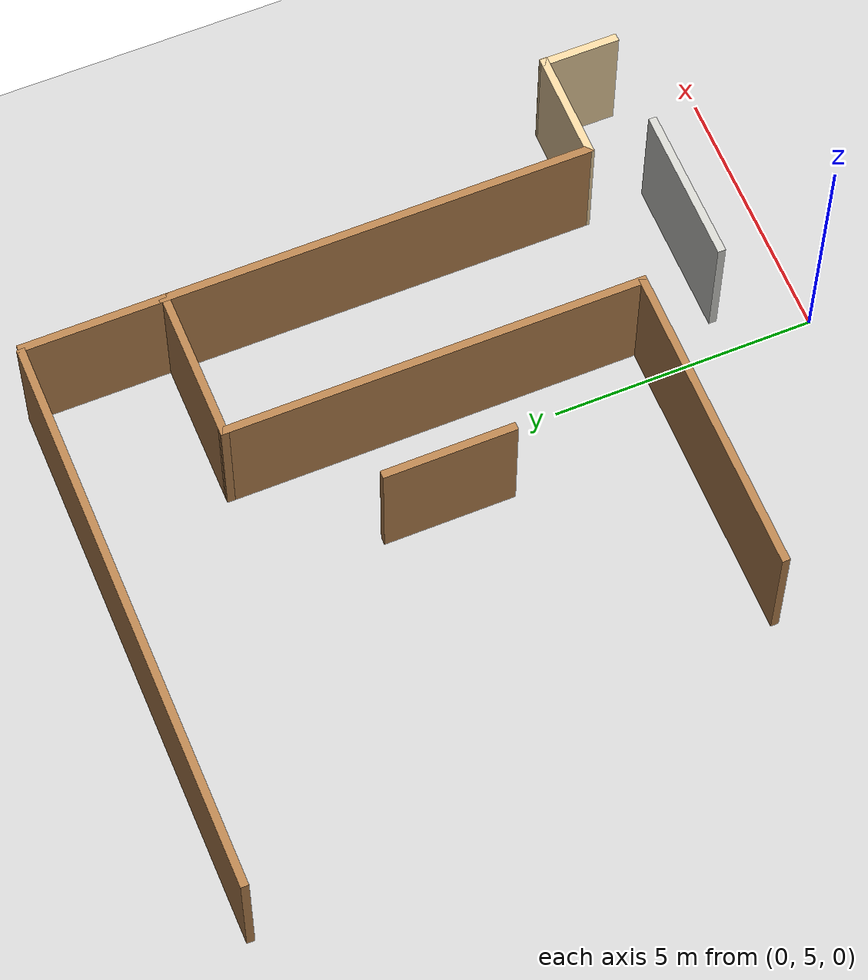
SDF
<sdf version="1.6">
 <world name="default">
  <model name="ground_plane">
   <static>1</static>
   <link name="link">
    <collision name="collision">
     <geometry><plane><normal>0 0 1</normal><size>100 100</size></plane></geometry>
     <surface><friction><ode><mu>100</mu><mu2>50</mu2></ode></friction></surface>
    </collision>
    <visual name="visual">
     <cast_shadows>0</cast_shadows>
     <geometry><plane><normal>0 0 1</normal><size>100 100</size></plane></geometry>
     <material>
      <script><uri>file://media/materials/scripts/gazebo.material</uri><name>Gazebo/Grey</name></script>
     </material>
    </visual>
   </link>
  </model>
  <model name="myHouse">
   <link name="Wall_22">
    <pose>5.64675 -0.032335 0 0 -0 3.14159</pose>
    <visual name="Wall_22_Visual">
     <pose>0 0 1.25 0 -0 0</pose>
     <geometry><box><size>3 0.15 2.5</size></box></geometry>
     <material>
      <script><uri>file://media/materials/scripts/gazebo.material</uri><name>Gazebo/CeilingTiled</name></script>
      <ambient>0.921569 0.807843 0.615686 1</ambient>
      <diffuse>1 1 1 1</diffuse>
      <specular>0 0 0 1</specular>
      <emissive>0 0 0 1</emissive>
     </material>
     <meta><layer>0</layer></meta>
    </visual>
    <collision name="Wall_22_Collision">
     <pose>0 0 1.25 0 -0 0</pose>
     <geometry><box><size>3 0.15 2.5</size></box></geometry>
     <surface>
      <friction>
       <ode><mu>1</mu><mu2>1</mu2><fdir1>0 0 0</fdir1><slip1>0</slip1><slip2>0</slip2></ode>
       <torsional>
        <coefficient>1</coefficient>
        <patch_radius>0</patch_radius>
        <surface_radius>0</surface_radius>
        <use_patch_radius>1</use_patch_radius>
        <ode><slip>0</slip></ode>
       </torsional>
      </friction>
      <bounce><restitution_coefficient>0</restitution_coefficient><threshold>1e+06</threshold></bounce>
      <contact>
       <collide_without_contact>0</collide_without_contact>
       <collide_without_contact_bitmask>1</collide_without_contact_bitmask>
       <collide_bitmask>1</collide_bitmask>
       <ode>
        <soft_cfm>0</soft_cfm>
        <soft_erp>0.2</soft_erp>
        <kp>1e+13</kp>
        <kd>1</kd>
        <max_vel>0.01</max_vel>
        <min_depth>0</min_depth>
       </ode>
       <bullet>
        <split_impulse>1</split_impulse>
        <split_impulse_penetration_threshold>-0.01</split_impulse_penetration_threshold>
        <soft_cfm>0</soft_cfm>
        <soft_erp>0.2</soft_erp>
        <kp>1e+13</kp>
        <kd>1</kd>
       </bullet>
      </contact>
     </surface>
    </collision>
   </link>
   <link name="Wall_28">
    <pose>1.20845 1.47937 0 0 -0 0</pose>
    <visual name="Wall_28_Visual">
     <pose>0 0 1.25 0 -0 0</pose>
     <geometry><box><size>6 0.15 2.5</size></box></geometry>
     <material>
      <script><uri>file://media/materials/scripts/gazebo.material</uri><name>Gazebo/Wood</name></script>
      <ambient>1 1 1 1</ambient>
      <diffuse>1 1 1 1</diffuse>
      <specular>0.2 0.2 0.2 1</specular>
      <emissive>0 0 0 1</emissive>
     </material>
     <meta><layer>0</layer></meta>
    </visual>
    <collision name="Wall_28_Collision">
     <pose>0 0 1.25 0 -0 0</pose>
     <geometry><box><size>6 0.15 2.5</size></box></geometry>
     <surface>
      <friction>
       <ode><mu>1</mu><mu2>1</mu2><fdir1>0 0 0</fdir1><slip1>0</slip1><slip2>0</slip2></ode>
       <torsional>
        <coefficient>1</coefficient>
        <patch_radius>0</patch_radius>
        <surface_radius>0</surface_radius>
        <use_patch_radius>1</use_patch_radius>
        <ode><slip>0</slip></ode>
       </torsional>
      </friction>
      <bounce><restitution_coefficient>0</restitution_coefficient><threshold>1e+06</threshold></bounce>
      <contact>
       <collide_without_contact>0</collide_without_contact>
       <collide_without_contact_bitmask>1</collide_without_contact_bitmask>
       <collide_bitmask>1</collide_bitmask>
       <ode>
        <soft_cfm>0</soft_cfm>
        <soft_erp>0.2</soft_erp>
        <kp>1e+13</kp>
        <kd>1</kd>
        <max_vel>0.01</max_vel>
        <min_depth>0</min_depth>
       </ode>
       <bullet>
        <split_impulse>1</split_impulse>
        <split_impulse_penetration_threshold>-0.01</split_impulse_penetration_threshold>
        <soft_cfm>0</soft_cfm>
        <soft_erp>0.2</soft_erp>
        <kp>1e+13</kp>
        <kd>1</kd>
       </bullet>
      </contact>
     </surface>
    </collision>
   </link>
   <link name="Wall_29">
    <pose>4.13345 5.40437 0 0 -0 1.5708</pose>
    <visual name="Wall_29_Visual">
     <pose>0 0 1.25 0 -0 0</pose>
     <geometry><box><size>8 0.15 2.5</size></box></geometry>
     <material>
      <script><uri>file://media/materials/scripts/gazebo.material</uri><name>Gazebo/Wood</name></script>
      <ambient>1 1 1 1</ambient>
      <diffuse>1 1 1 1</diffuse>
      <specular>0.2 0.2 0.2 1</specular>
      <emissive>0 0 0 1</emissive>
     </material>
     <meta><layer>0</layer></meta>
    </visual>
    <collision name="Wall_29_Collision">
     <pose>0 0 1.25 0 -0 0</pose>
     <geometry><box><size>8 0.15 2.5</size></box></geometry>
     <surface>
      <friction>
       <ode><mu>1</mu><mu2>1</mu2><fdir1>0 0 0</fdir1><slip1>0</slip1><slip2>0</slip2></ode>
       <torsional>
        <coefficient>1</coefficient>
        <patch_radius>0</patch_radius>
        <surface_radius>0</surface_radius>
        <use_patch_radius>1</use_patch_radius>
        <ode><slip>0</slip></ode>
       </torsional>
      </friction>
      <bounce><restitution_coefficient>0</restitution_coefficient><threshold>1e+06</threshold></bounce>
      <contact>
       <collide_without_contact>0</collide_without_contact>
       <collide_without_contact_bitmask>1</collide_without_contact_bitmask>
       <collide_bitmask>1</collide_bitmask>
       <ode>
        <soft_cfm>0</soft_cfm>
        <soft_erp>0.2</soft_erp>
        <kp>1e+13</kp>
        <kd>1</kd>
        <max_vel>0.01</max_vel>
        <min_depth>0</min_depth>
       </ode>
       <bullet>
        <split_impulse>1</split_impulse>
        <split_impulse_penetration_threshold>-0.01</split_impulse_penetration_threshold>
        <soft_cfm>0</soft_cfm>
        <soft_erp>0.2</soft_erp>
        <kp>1e+13</kp>
        <kd>1</kd>
       </bullet>
      </contact>
     </surface>
    </collision>
   </link>
   <link name="Wall_30">
    <pose>5.55565 9.3284 0 0 0 -0.000679</pose>
    <visual name="Wall_30_Visual">
     <pose>0 0 1.25 0 -0 0</pose>
     <geometry><box><size>2.99474 0.15 2.5</size></box></geometry>
     <material>
      <script><uri>file://media/materials/scripts/gazebo.material</uri><name>Gazebo/Wood</name></script>
      <ambient>1 1 1 1</ambient>
      <diffuse>1 1 1 1</diffuse>
      <specular>0.2 0.2 0.2 1</specular>
      <emissive>0 0 0 1</emissive>
     </material>
     <meta><layer>0</layer></meta>
    </visual>
    <collision name="Wall_30_Collision">
     <pose>0 0 1.25 0 -0 0</pose>
     <geometry><box><size>2.99474 0.15 2.5</size></box></geometry>
     <surface>
      <friction>
       <ode><mu>1</mu><mu2>1</mu2><fdir1>0 0 0</fdir1><slip1>0</slip1><slip2>0</slip2></ode>
       <torsional>
        <coefficient>1</coefficient>
        <patch_radius>0</patch_radius>
        <surface_radius>0</surface_radius>
        <use_patch_radius>1</use_patch_radius>
        <ode><slip>0</slip></ode>
       </torsional>
      </friction>
      <bounce><restitution_coefficient>0</restitution_coefficient><threshold>1e+06</threshold></bounce>
      <contact>
       <collide_without_contact>0</collide_without_contact>
       <collide_without_contact_bitmask>1</collide_without_contact_bitmask>
       <collide_bitmask>1</collide_bitmask>
       <ode>
        <soft_cfm>0</soft_cfm>
        <soft_erp>0.2</soft_erp>
        <kp>1e+13</kp>
        <kd>1</kd>
        <max_vel>0.01</max_vel>
        <min_depth>0</min_depth>
       </ode>
       <bullet>
        <split_impulse>1</split_impulse>
        <split_impulse_penetration_threshold>-0.01</split_impulse_penetration_threshold>
        <soft_cfm>0</soft_cfm>
        <soft_erp>0.2</soft_erp>
        <kp>1e+13</kp>
        <kd>1</kd>
       </bullet>
      </contact>
     </surface>
    </collision>
   </link>
   <link name="Wall_31">
    <pose>6.97785 5.3228 0 0 0 -1.5708</pose>
    <visual name="Wall_31_Visual">
     <pose>0 0 1.25 0 -0 0</pose>
     <geometry><box><size>8.25 0.15 2.5</size></box></geometry>
     <material>
      <script><uri>file://media/materials/scripts/gazebo.material</uri><name>Gazebo/Wood</name></script>
      <ambient>1 1 1 1</ambient>
      <diffuse>1 1 1 1</diffuse>
      <specular>0.2 0.2 0.2 1</specular>
      <emissive>0 0 0 1</emissive>
     </material>
     <meta><layer>0</layer></meta>
    </visual>
    <collision name="Wall_31_Collision">
     <pose>0 0 1.25 0 -0 0</pose>
     <geometry><box><size>8.25 0.15 2.5</size></box></geometry>
     <surface>
      <friction>
       <ode><mu>1</mu><mu2>1</mu2><fdir1>0 0 0</fdir1><slip1>0</slip1><slip2>0</slip2></ode>
       <torsional>
        <coefficient>1</coefficient>
        <patch_radius>0</patch_radius>
        <surface_radius>0</surface_radius>
        <use_patch_radius>1</use_patch_radius>
        <ode><slip>0</slip></ode>
       </torsional>
      </friction>
      <bounce><restitution_coefficient>0</restitution_coefficient><threshold>1e+06</threshold></bounce>
      <contact>
       <collide_without_contact>0</collide_without_contact>
       <collide_without_contact_bitmask>1</collide_without_contact_bitmask>
       <collide_bitmask>1</collide_bitmask>
       <ode>
        <soft_cfm>0</soft_cfm>
        <soft_erp>0.2</soft_erp>
        <kp>1e+13</kp>
        <kd>1</kd>
        <max_vel>0.01</max_vel>
        <min_depth>0</min_depth>
       </ode>
       <bullet>
        <split_impulse>1</split_impulse>
        <split_impulse_penetration_threshold>-0.01</split_impulse_penetration_threshold>
        <soft_cfm>0</soft_cfm>
        <soft_erp>0.2</soft_erp>
        <kp>1e+13</kp>
        <kd>1</kd>
       </bullet>
      </contact>
     </surface>
    </collision>
   </link>
   <link name="Wall_39">
    <pose>2.31022 5.90419 0 0 -0 1.5708</pose>
    <visual name="Wall_39_Visual">
     <pose>0 0 1.25 0 -0 0</pose>
     <geometry><box><size>2.5 0.15 2.5</size></box></geometry>
     <material>
      <script><uri>file://media/materials/scripts/gazebo.material</uri><name>Gazebo/Wood</name></script>
      <ambient>1 1 1 1</ambient>
      <diffuse>1 1 1 1</diffuse>
      <specular>0.2 0.2 0.2 1</specular>
      <emissive>0 0 0 1</emissive>
     </material>
     <meta><layer>0</layer></meta>
    </visual>
    <collision name="Wall_39_Collision">
     <pose>0 0 1.25 0 -0 0</pose>
     <geometry><box><size>2.5 0.15 2.5</size></box></geometry>
     <surface>
      <friction>
       <ode><mu>1</mu><mu2>1</mu2><fdir1>0 0 0</fdir1><slip1>0</slip1><slip2>0</slip2></ode>
       <torsional>
        <coefficient>1</coefficient>
        <patch_radius>0</patch_radius>
        <surface_radius>0</surface_radius>
        <use_patch_radius>1</use_patch_radius>
        <ode><slip>0</slip></ode>
       </torsional>
      </friction>
      <bounce><restitution_coefficient>0</restitution_coefficient><threshold>1e+06</threshold></bounce>
      <contact>
       <collide_without_contact>0</collide_without_contact>
       <collide_without_contact_bitmask>1</collide_without_contact_bitmask>
       <collide_bitmask>1</collide_bitmask>
       <ode>
        <soft_cfm>0</soft_cfm>
        <soft_erp>0.2</soft_erp>
        <kp>1e+13</kp>
        <kd>1</kd>
        <max_vel>0.01</max_vel>
        <min_depth>0</min_depth>
       </ode>
       <bullet>
        <split_impulse>1</split_impulse>
        <split_impulse_penetration_threshold>-0.01</split_impulse_penetration_threshold>
        <soft_cfm>0</soft_cfm>
        <soft_erp>0.2</soft_erp>
        <kp>1e+13</kp>
        <kd>1</kd>
       </bullet>
      </contact>
     </surface>
    </collision>
   </link>
   <link name="Wall_47">
    <pose>1.59009 12.0045 0 0 -0 0</pose>
    <visual name="Wall_47_Visual">
     <pose>0 0 1.25 0 -0 0</pose>
     <geometry><box><size>10.75 0.15 2.5</size></box></geometry>
     <material>
      <script><uri>file://media/materials/scripts/gazebo.material</uri><name>Gazebo/Wood</name></script>
      <ambient>1 1 1 1</ambient>
      <diffuse>1 1 1 1</diffuse>
      <specular>0.2 0.2 0.2 1</specular>
      <emissive>0 0 0 1</emissive>
     </material>
     <meta><layer>0</layer></meta>
    </visual>
    <collision name="Wall_47_Collision">
     <pose>0 0 1.25 0 -0 0</pose>
     <geometry><box><size>10.75 0.15 2.5</size></box></geometry>
     <surface>
      <friction>
       <ode><mu>1</mu><mu2>1</mu2><fdir1>0 0 0</fdir1><slip1>0</slip1><slip2>0</slip2></ode>
       <torsional>
        <coefficient>1</coefficient>
        <patch_radius>0</patch_radius>
        <surface_radius>0</surface_radius>
        <use_patch_radius>1</use_patch_radius>
        <ode><slip>0</slip></ode>
       </torsional>
      </friction>
      <bounce><restitution_coefficient>0</restitution_coefficient><threshold>1e+06</threshold></bounce>
      <contact>
       <collide_without_contact>0</collide_without_contact>
       <collide_without_contact_bitmask>1</collide_without_contact_bitmask>
       <collide_bitmask>1</collide_bitmask>
       <ode>
        <soft_cfm>0</soft_cfm>
        <soft_erp>0.2</soft_erp>
        <kp>1e+13</kp>
        <kd>1</kd>
        <max_vel>0.01</max_vel>
        <min_depth>0</min_depth>
       </ode>
       <bullet>
        <split_impulse>1</split_impulse>
        <split_impulse_penetration_threshold>-0.01</split_impulse_penetration_threshold>
        <soft_cfm>0</soft_cfm>
        <soft_erp>0.2</soft_erp>
        <kp>1e+13</kp>
        <kd>1</kd>
       </bullet>
      </contact>
     </surface>
    </collision>
   </link>
   <link name="Wall_49">
    <pose>6.97785 10.6728 0 0 -0 1.5708</pose>
    <visual name="Wall_49_Visual">
     <pose>0 0 1.25 0 -0 0</pose>
     <geometry><box><size>2.75 0.15 2.5</size></box></geometry>
     <material>
      <script><uri>file://media/materials/scripts/gazebo.material</uri><name>Gazebo/Wood</name></script>
      <ambient>1 1 1 1</ambient>
      <diffuse>1 1 1 1</diffuse>
      <specular>0.2 0.2 0.2 1</specular>
      <emissive>0 0 0 1</emissive>
     </material>
     <meta><layer>0</layer></meta>
    </visual>
    <collision name="Wall_49_Collision">
     <pose>0 0 1.25 0 -0 0</pose>
     <geometry><box><size>2.75 0.15 2.5</size></box></geometry>
     <surface>
      <friction>
       <ode><mu>1</mu><mu2>1</mu2><fdir1>0 0 0</fdir1><slip1>0</slip1><slip2>0</slip2></ode>
       <torsional>
        <coefficient>1</coefficient>
        <patch_radius>0</patch_radius>
        <surface_radius>0</surface_radius>
        <use_patch_radius>1</use_patch_radius>
        <ode><slip>0</slip></ode>
       </torsional>
      </friction>
      <bounce><restitution_coefficient>0</restitution_coefficient><threshold>1e+06</threshold></bounce>
      <contact>
       <collide_without_contact>0</collide_without_contact>
       <collide_without_contact_bitmask>1</collide_without_contact_bitmask>
       <collide_bitmask>1</collide_bitmask>
       <ode>
        <soft_cfm>0</soft_cfm>
        <soft_erp>0.2</soft_erp>
        <kp>1e+13</kp>
        <kd>1</kd>
        <max_vel>0.01</max_vel>
        <min_depth>0</min_depth>
       </ode>
       <bullet>
        <split_impulse>1</split_impulse>
        <split_impulse_penetration_threshold>-0.01</split_impulse_penetration_threshold>
        <soft_cfm>0</soft_cfm>
        <soft_erp>0.2</soft_erp>
        <kp>1e+13</kp>
        <kd>1</kd>
       </bullet>
      </contact>
     </surface>
    </collision>
   </link>
   <link name="Wall_51">
    <pose>7.98368 1.27165 0 0 0 -0.001144</pose>
    <visual name="Wall_51_Visual">
     <pose>0 0 1.25 0 -0 0</pose>
     <geometry><box><size>2.16166 0.15 2.5</size></box></geometry>
     <material>
      <script><uri>file://media/materials/scripts/gazebo.material</uri><name>Gazebo/Grey</name></script>
      <ambient>0.921569 0.807843 0.615686 1</ambient>
      <diffuse>0.7 0.7 0.7 1</diffuse>
      <specular>0.01 0.01 0.01 1</specular>
      <emissive>0 0 0 1</emissive>
     </material>
     <meta><layer>0</layer></meta>
    </visual>
    <collision name="Wall_51_Collision">
     <pose>0 0 1.25 0 -0 0</pose>
     <geometry><box><size>2.16166 0.15 2.5</size></box></geometry>
     <surface>
      <friction>
       <ode><mu>1</mu><mu2>1</mu2><fdir1>0 0 0</fdir1><slip1>0</slip1><slip2>0</slip2></ode>
       <torsional>
        <coefficient>1</coefficient>
        <patch_radius>0</patch_radius>
        <surface_radius>0</surface_radius>
        <use_patch_radius>1</use_patch_radius>
        <ode><slip>0</slip></ode>
       </torsional>
      </friction>
      <bounce><restitution_coefficient>0</restitution_coefficient><threshold>1e+06</threshold></bounce>
      <contact>
       <collide_without_contact>0</collide_without_contact>
       <collide_without_contact_bitmask>1</collide_without_contact_bitmask>
       <collide_bitmask>1</collide_bitmask>
       <ode>
        <soft_cfm>0</soft_cfm>
        <soft_erp>0.2</soft_erp>
        <kp>1e+13</kp>
        <kd>1</kd>
        <max_vel>0.01</max_vel>
        <min_depth>0</min_depth>
       </ode>
       <bullet>
        <split_impulse>1</split_impulse>
        <split_impulse_penetration_threshold>-0.01</split_impulse_penetration_threshold>
        <soft_cfm>0</soft_cfm>
        <soft_erp>0.2</soft_erp>
        <kp>1e+13</kp>
        <kd>1</kd>
       </bullet>
      </contact>
     </surface>
    </collision>
   </link>
   <link name="Wall_52">
    <pose>8.97976 0.595501 0 0 0 -1.5708</pose>
    <visual name="Wall_52_Visual">
     <pose>0 0 1.25 0 -0 0</pose>
     <geometry><box><size>1.5 0.15 2.5</size></box></geometry>
     <material>
      <script><uri>file://media/materials/scripts/gazebo.material</uri><name>Gazebo/Grey</name></script>
      <ambient>0.921569 0.807843 0.615686 1</ambient>
      <diffuse>0.7 0.7 0.7 1</diffuse>
      <specular>0.01 0.01 0.01 1</specular>
      <emissive>0 0 0 1</emissive>
     </material>
     <meta><layer>0</layer></meta>
    </visual>
    <collision name="Wall_52_Collision">
     <pose>0 0 1.25 0 -0 0</pose>
     <geometry><box><size>1.5 0.15 2.5</size></box></geometry>
     <surface>
      <friction>
       <ode><mu>1</mu><mu2>1</mu2><fdir1>0 0 0</fdir1><slip1>0</slip1><slip2>0</slip2></ode>
       <torsional>
        <coefficient>1</coefficient>
        <patch_radius>0</patch_radius>
        <surface_radius>0</surface_radius>
        <use_patch_radius>1</use_patch_radius>
        <ode><slip>0</slip></ode>
       </torsional>
      </friction>
      <bounce><restitution_coefficient>0</restitution_coefficient><threshold>1e+06</threshold></bounce>
      <contact>
       <collide_without_contact>0</collide_without_contact>
       <collide_without_contact_bitmask>1</collide_without_contact_bitmask>
       <collide_bitmask>1</collide_bitmask>
       <ode>
        <soft_cfm>0</soft_cfm>
        <soft_erp>0.2</soft_erp>
        <kp>1e+13</kp>
        <kd>1</kd>
        <max_vel>0.01</max_vel>
        <min_depth>0</min_depth>
       </ode>
       <bullet>
        <split_impulse>1</split_impulse>
        <split_impulse_penetration_threshold>-0.01</split_impulse_penetration_threshold>
        <soft_cfm>0</soft_cfm>
        <soft_erp>0.2</soft_erp>
        <kp>1e+13</kp>
        <kd>1</kd>
       </bullet>
      </contact>
     </surface>
    </collision>
   </link>
   <static>1</static>
   <pose>-3.47025 6.64899 0 0 -0 0</pose>
  </model>
 </world>
</sdf>
